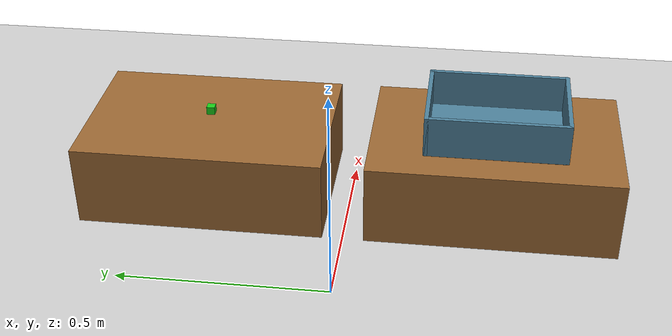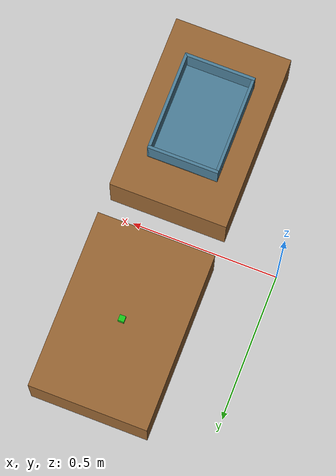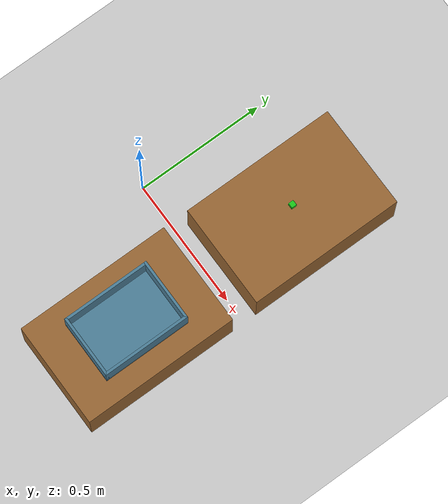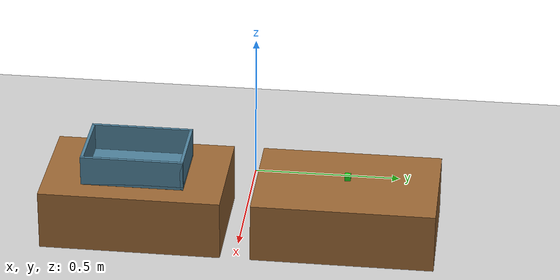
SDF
<?xml version="1.0" ?>
<sdf version="1.6">
  <world name="bin_picking_world">

    <!-- Basic scene settings -->
    <scene>
      <ambient>0.4 0.4 0.4 1</ambient>
      <background>0.7 0.7 0.7 1</background>
      <shadows>true</shadows>
    </scene>

    <!-- Sun -->
    <light name="sun" type="directional">
      <cast_shadows>true</cast_shadows>
      <pose>0 0 10 0 0 0</pose>
      <diffuse>0.8 0.8 0.8 1</diffuse>
      <specular>0.2 0.2 0.2 1</specular>
      <direction>-0.5 0.1 -0.9</direction>
    </light>

    <!-- Ground plane -->
    <model name="ground_plane">
      <static>true</static>
      <link name="link">
        <collision name="collision">
          <geometry>
            <plane><normal>0 0 1</normal><size>100 100</size></plane>
          </geometry>
          <surface>
            <friction><ode><mu>100</mu><mu2>50</mu2></ode></friction>
          </surface>
        </collision>
        <visual name="visual">
          <geometry>
            <plane><normal>0 0 1</normal><size>100 100</size></plane>
          </geometry>
          <material>
            <ambient>0.8 0.8 0.8 1</ambient>
            <diffuse>0.8 0.8 0.8 1</diffuse>
          </material>
        </visual>
      </link>
    </model>

    <!-- Bin table, to the robot's right (top surface at z = 0.2) -->
    <model name="table">
      <static>true</static>
      <pose>0.4 -0.35 0.1 0 0 0</pose>
      <link name="link">
        <collision name="collision">
          <geometry><box><size>0.4 0.6 0.2</size></box></geometry>
        </collision>
        <visual name="visual">
          <geometry><box><size>0.4 0.6 0.2</size></box></geometry>
          <material>
            <ambient>0.4 0.25 0.1 1</ambient>
            <diffuse>0.6 0.4 0.2 1</diffuse>
          </material>
        </visual>
      </link>
    </model>

    <!-- Open-top bin sitting on the bin table (base at z = 0.2) -->
    <model name="bin">
      <static>true</static>
      <pose>0.4 -0.35 0.2 0 0 0</pose>
      <link name="link">
        <!-- floor -->
        <collision name="floor_col">
          <pose>0 0 0.005 0 0 0</pose>
          <geometry><box><size>0.24 0.34 0.01</size></box></geometry>
        </collision>
        <visual name="floor_vis">
          <pose>0 0 0.005 0 0 0</pose>
          <geometry><box><size>0.24 0.34 0.01</size></box></geometry>
          <material><ambient>0.2 0.4 0.5 1</ambient><diffuse>0.3 0.5 0.6 1</diffuse></material>
        </visual>
        <!-- +x wall -->
        <collision name="wall_px_col">
          <pose>0.115 0 0.05 0 0 0</pose>
          <geometry><box><size>0.01 0.34 0.1</size></box></geometry>
        </collision>
        <visual name="wall_px_vis">
          <pose>0.115 0 0.05 0 0 0</pose>
          <geometry><box><size>0.01 0.34 0.1</size></box></geometry>
          <material><ambient>0.2 0.4 0.5 1</ambient><diffuse>0.3 0.5 0.6 1</diffuse></material>
        </visual>
        <!-- -x wall -->
        <collision name="wall_nx_col">
          <pose>-0.115 0 0.05 0 0 0</pose>
          <geometry><box><size>0.01 0.34 0.1</size></box></geometry>
        </collision>
        <visual name="wall_nx_vis">
          <pose>-0.115 0 0.05 0 0 0</pose>
          <geometry><box><size>0.01 0.34 0.1</size></box></geometry>
          <material><ambient>0.2 0.4 0.5 1</ambient><diffuse>0.3 0.5 0.6 1</diffuse></material>
        </visual>
        <!-- +y wall -->
        <collision name="wall_py_col">
          <pose>0 0.165 0.05 0 0 0</pose>
          <geometry><box><size>0.24 0.01 0.1</size></box></geometry>
        </collision>
        <visual name="wall_py_vis">
          <pose>0 0.165 0.05 0 0 0</pose>
          <geometry><box><size>0.24 0.01 0.1</size></box></geometry>
          <material><ambient>0.2 0.4 0.5 1</ambient><diffuse>0.3 0.5 0.6 1</diffuse></material>
        </visual>
        <!-- -y wall -->
        <collision name="wall_ny_col">
          <pose>0 -0.165 0.05 0 0 0</pose>
          <geometry><box><size>0.24 0.01 0.1</size></box></geometry>
        </collision>
        <visual name="wall_ny_vis">
          <pose>0 -0.165 0.05 0 0 0</pose>
          <geometry><box><size>0.24 0.01 0.1</size></box></geometry>
          <material><ambient>0.2 0.4 0.5 1</ambient><diffuse>0.3 0.5 0.6 1</diffuse></material>
        </visual>
      </link>
    </model>

    <!-- Pick table, to the robot's left (top surface at z = 0.2) -->
    <model name="pick_table">
      <static>true</static>
      <pose>0.4 0.35 0.1 0 0 0</pose>
      <link name="link">
        <collision name="collision">
          <geometry><box><size>0.4 0.6 0.2</size></box></geometry>
        </collision>
        <visual name="visual">
          <geometry><box><size>0.4 0.6 0.2</size></box></geometry>
          <material>
            <ambient>0.4 0.25 0.1 1</ambient>
            <diffuse>0.6 0.4 0.2 1</diffuse>
          </material>
        </visual>
      </link>
    </model>

    <!-- Green cube to pick (dynamic, resting on the pick table top at z = 0.2) -->
    <model name="green_cube">
      <pose>0.4 0.35 0.22 0 0 0</pose>
      <link name="link">
        <inertial>
          <mass>0.05</mass>
          <inertia>
            <ixx>0.0000133</ixx><ixy>0</ixy><ixz>0</ixz>
            <iyy>0.0000133</iyy><iyz>0</iyz><izz>0.0000133</izz>
          </inertia>
        </inertial>
        <collision name="collision">
          <geometry><box><size>0.02 0.02 0.02</size></box></geometry>
          <surface>
            <friction><ode><mu>1.0</mu><mu2>1.0</mu2></ode></friction>
          </surface>
        </collision>
        <visual name="visual">
          <geometry><box><size>0.02 0.02 0.02</size></box></geometry>
          <material>
            <ambient>0.1 0.6 0.1 1</ambient>
            <diffuse>0.1 0.8 0.1 1</diffuse>
          </material>
        </visual>
      </link>
    </model>

    <plugin name="gazebo_link_attacher" filename="libgazebo_link_attacher.so"/>

  </world>
</sdf>
